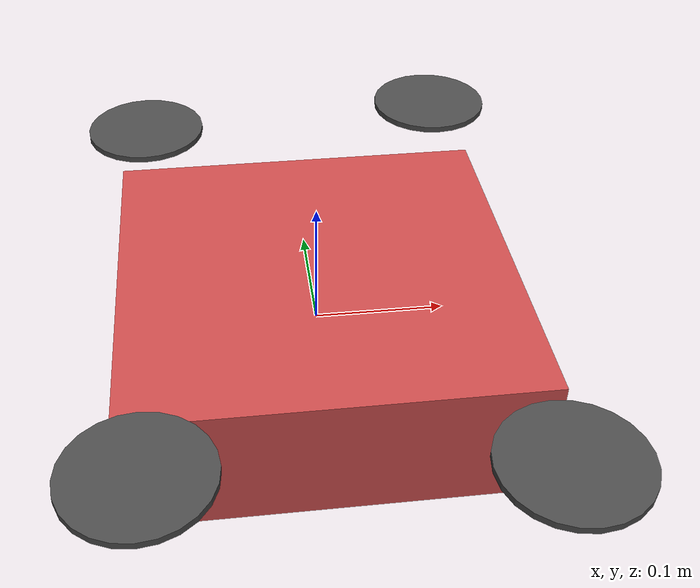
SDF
<?xml version='1.0' encoding='utf-8'?>
<sdf version="1.10">
  <model name="x500_like">
    <static>false</static>
    <link name="base_link">
      <pose>0 0 0 0 0 0</pose>
      <visual name="base_link_visual">
        <pose>0 0 0 0 0 0</pose>
        <geometry>
          <box>
            <size>0.3 0.3 0.1</size>
          </box>
        </geometry>
        <material>
          <ambient>0.6 0.2 0.2 1</ambient>
          <diffuse>0.8 0.3 0.3 1</diffuse>
        </material>
      </visual>
      <collision name="base_link_collision">
        <pose>0 0 0 0 0 0</pose>
        <geometry>
          <box>
            <size>0.3 0.3 0.1</size>
          </box>
        </geometry>
      </collision>
      <inertial>
        <mass>2</mass>
        <inertia>
          <ixx>0.0166667</ixx>
          <ixy>0</ixy>
          <ixz>0</ixz>
          <iyy>0.0166667</iyy>
          <iyz>0</iyz>
          <izz>0.03</izz>
        </inertia>
      </inertial>
      <sensor name="imu_sensor" type="imu">
        <always_on>1</always_on>
        <update_rate>250</update_rate>
        <imu>
          <angular_velocity>
            <x>
              <noise type="gaussian">
                <mean>0</mean>
                <stddev>0.0001</stddev>
                <bias_mean>7.5e-06</bias_mean>
                <bias_stddev>8e-07</bias_stddev>
              </noise>
            </x>
            <y>
              <noise type="gaussian">
                <mean>0</mean>
                <stddev>0.0001</stddev>
                <bias_mean>7.5e-06</bias_mean>
                <bias_stddev>8e-07</bias_stddev>
              </noise>
            </y>
            <z>
              <noise type="gaussian">
                <mean>0</mean>
                <stddev>0.0001</stddev>
                <bias_mean>7.5e-06</bias_mean>
                <bias_stddev>8e-07</bias_stddev>
              </noise>
            </z>
          </angular_velocity>
          <linear_acceleration>
            <x>
              <noise type="gaussian">
                <mean>0</mean>
                <stddev>0.001</stddev>
                <bias_mean>0.0001</bias_mean>
                <bias_stddev>0.001</bias_stddev>
              </noise>
            </x>
            <y>
              <noise type="gaussian">
                <mean>0</mean>
                <stddev>0.001</stddev>
                <bias_mean>0.0001</bias_mean>
                <bias_stddev>0.001</bias_stddev>
              </noise>
            </y>
            <z>
              <noise type="gaussian">
                <mean>0</mean>
                <stddev>0.001</stddev>
                <bias_mean>0.0001</bias_mean>
                <bias_stddev>0.001</bias_stddev>
              </noise>
            </z>
          </linear_acceleration>
        </imu>
      </sensor>
      <sensor name="navsat_sensor" type="navsat">
        <always_on>1</always_on>
        <update_rate>20</update_rate>
      </sensor>
      <sensor name="air_pressure_sensor" type="air_pressure">
        <always_on>1</always_on>
        <update_rate>50</update_rate>
        <air_pressure>
          <reference_altitude>0</reference_altitude>
          <pressure>
            <noise type="gaussian">
              <mean>0</mean>
              <stddev>1.0</stddev>
            </noise>
          </pressure>
        </air_pressure>
      </sensor>
      <sensor name="magnetometer_sensor" type="magnetometer">
        <always_on>1</always_on>
        <update_rate>50</update_rate>
        <magnetometer>
          <x>
            <noise type="gaussian">
              <mean>0</mean>
              <stddev>1.0e-06</stddev>
              <bias_mean>1.0e-06</bias_mean>
              <bias_stddev>3.0e-07</bias_stddev>
            </noise>
          </x>
          <y>
            <noise type="gaussian">
              <mean>0</mean>
              <stddev>1.0e-06</stddev>
              <bias_mean>1.0e-06</bias_mean>
              <bias_stddev>3.0e-07</bias_stddev>
            </noise>
          </y>
          <z>
            <noise type="gaussian">
              <mean>0</mean>
              <stddev>1.0e-06</stddev>
              <bias_mean>1.0e-06</bias_mean>
              <bias_stddev>3.0e-07</bias_stddev>
            </noise>
          </z>
        </magnetometer>
      </sensor>
    </link>
    <link name="rotor_0">
      <pose>0.13 -0.22 0.06 0 0 0</pose>
      <visual name="rotor_0_visual">
        <pose>0 0 0 0 0 0</pose>
        <geometry>
          <cylinder>
            <radius>0.05</radius>
            <length>0.005</length>
          </cylinder>
        </geometry>
        <material>
          <ambient>0.2 0.2 0.2 1</ambient>
          <diffuse>0.3 0.3 0.3 1</diffuse>
        </material>
      </visual>
      <collision name="rotor_0_collision">
        <pose>0 0 0 0 0 0</pose>
        <geometry>
          <cylinder>
            <radius>0.05</radius>
            <length>0.005</length>
          </cylinder>
        </geometry>
      </collision>
      <inertial>
        <mass>0.016</mass>
        <inertia>
          <ixx>4.00333e-05</ixx>
          <ixy>0</ixy>
          <ixz>0</ixz>
          <iyy>4.00333e-05</iyy>
          <iyz>0</iyz>
          <izz>8e-05</izz>
        </inertia>
      </inertial>
    </link>
    <link name="rotor_1">
      <pose>-0.13 0.2 0.06 0 0 0</pose>
      <visual name="rotor_1_visual">
        <pose>0 0 0 0 0 0</pose>
        <geometry>
          <cylinder>
            <radius>0.05</radius>
            <length>0.005</length>
          </cylinder>
        </geometry>
        <material>
          <ambient>0.2 0.2 0.2 1</ambient>
          <diffuse>0.3 0.3 0.3 1</diffuse>
        </material>
      </visual>
      <collision name="rotor_1_collision">
        <pose>0 0 0 0 0 0</pose>
        <geometry>
          <cylinder>
            <radius>0.05</radius>
            <length>0.005</length>
          </cylinder>
        </geometry>
      </collision>
      <inertial>
        <mass>0.016</mass>
        <inertia>
          <ixx>4.00333e-05</ixx>
          <ixy>0</ixy>
          <ixz>0</ixz>
          <iyy>4.00333e-05</iyy>
          <iyz>0</iyz>
          <izz>8e-05</izz>
        </inertia>
      </inertial>
    </link>
    <link name="rotor_2">
      <pose>0.13 0.22 0.06 0 0 0</pose>
      <visual name="rotor_2_visual">
        <pose>0 0 0 0 0 0</pose>
        <geometry>
          <cylinder>
            <radius>0.05</radius>
            <length>0.005</length>
          </cylinder>
        </geometry>
        <material>
          <ambient>0.2 0.2 0.2 1</ambient>
          <diffuse>0.3 0.3 0.3 1</diffuse>
        </material>
      </visual>
      <collision name="rotor_2_collision">
        <pose>0 0 0 0 0 0</pose>
        <geometry>
          <cylinder>
            <radius>0.05</radius>
            <length>0.005</length>
          </cylinder>
        </geometry>
      </collision>
      <inertial>
        <mass>0.016</mass>
        <inertia>
          <ixx>4.00333e-05</ixx>
          <ixy>0</ixy>
          <ixz>0</ixz>
          <iyy>4.00333e-05</iyy>
          <iyz>0</iyz>
          <izz>8e-05</izz>
        </inertia>
      </inertial>
    </link>
    <link name="rotor_3">
      <pose>-0.13 -0.2 0.06 0 0 0</pose>
      <visual name="rotor_3_visual">
        <pose>0 0 0 0 0 0</pose>
        <geometry>
          <cylinder>
            <radius>0.05</radius>
            <length>0.005</length>
          </cylinder>
        </geometry>
        <material>
          <ambient>0.2 0.2 0.2 1</ambient>
          <diffuse>0.3 0.3 0.3 1</diffuse>
        </material>
      </visual>
      <collision name="rotor_3_collision">
        <pose>0 0 0 0 0 0</pose>
        <geometry>
          <cylinder>
            <radius>0.05</radius>
            <length>0.005</length>
          </cylinder>
        </geometry>
      </collision>
      <inertial>
        <mass>0.016</mass>
        <inertia>
          <ixx>4.00333e-05</ixx>
          <ixy>0</ixy>
          <ixz>0</ixz>
          <iyy>4.00333e-05</iyy>
          <iyz>0</iyz>
          <izz>8e-05</izz>
        </inertia>
      </inertial>
    </link>
    <joint name="rotor_0_joint" type="revolute">
      <parent>base_link</parent>
      <child>rotor_0</child>
      <axis>
        <xyz>0 0 1</xyz>
        <dynamics>
          <damping>0.1</damping>
          <friction>0</friction>
        </dynamics>
      </axis>
    </joint>
    <joint name="rotor_1_joint" type="revolute">
      <parent>base_link</parent>
      <child>rotor_1</child>
      <axis>
        <xyz>0 0 1</xyz>
        <dynamics>
          <damping>0.1</damping>
          <friction>0</friction>
        </dynamics>
      </axis>
    </joint>
    <joint name="rotor_2_joint" type="revolute">
      <parent>base_link</parent>
      <child>rotor_2</child>
      <axis>
        <xyz>0 0 1</xyz>
        <dynamics>
          <damping>0.1</damping>
          <friction>0</friction>
        </dynamics>
      </axis>
    </joint>
    <joint name="rotor_3_joint" type="revolute">
      <parent>base_link</parent>
      <child>rotor_3</child>
      <axis>
        <xyz>0 0 1</xyz>
        <dynamics>
          <damping>0.1</damping>
          <friction>0</friction>
        </dynamics>
      </axis>
    </joint>
    <plugin filename="gz-sim-multicopter-motor-model-system" name="gz::sim::systems::MulticopterMotorModel">
      <jointName>rotor_0_joint</jointName>
      <linkName>rotor_0</linkName>
      <turningDirection>ccw</turningDirection>
      <timeConstantUp>0.0125</timeConstantUp>
      <timeConstantDown>0.025</timeConstantDown>
      <maxRotVelocity>1000</maxRotVelocity>
      <motorConstant>8.54858e-06</motorConstant>
      <momentConstant>0.016</momentConstant>
      <commandSubTopic>command/motor_speed</commandSubTopic>
      <motorNumber>0</motorNumber>
      <rotorDragCoefficient>8.06428e-05</rotorDragCoefficient>
      <rollingMomentCoefficient>1e-06</rollingMomentCoefficient>
      <motorSpeedPubTopic>motor_speed/0</motorSpeedPubTopic>
      <rotorVelocitySlowdownSim>10</rotorVelocitySlowdownSim>
      <motorType>velocity</motorType>
    </plugin>
    <plugin filename="gz-sim-multicopter-motor-model-system" name="gz::sim::systems::MulticopterMotorModel">
      <jointName>rotor_1_joint</jointName>
      <linkName>rotor_1</linkName>
      <turningDirection>ccw</turningDirection>
      <timeConstantUp>0.0125</timeConstantUp>
      <timeConstantDown>0.025</timeConstantDown>
      <maxRotVelocity>1000</maxRotVelocity>
      <motorConstant>8.54858e-06</motorConstant>
      <momentConstant>0.016</momentConstant>
      <commandSubTopic>command/motor_speed</commandSubTopic>
      <motorNumber>1</motorNumber>
      <rotorDragCoefficient>8.06428e-05</rotorDragCoefficient>
      <rollingMomentCoefficient>1e-06</rollingMomentCoefficient>
      <motorSpeedPubTopic>motor_speed/1</motorSpeedPubTopic>
      <rotorVelocitySlowdownSim>10</rotorVelocitySlowdownSim>
      <motorType>velocity</motorType>
    </plugin>
    <plugin filename="gz-sim-multicopter-motor-model-system" name="gz::sim::systems::MulticopterMotorModel">
      <jointName>rotor_2_joint</jointName>
      <linkName>rotor_2</linkName>
      <turningDirection>cw</turningDirection>
      <timeConstantUp>0.0125</timeConstantUp>
      <timeConstantDown>0.025</timeConstantDown>
      <maxRotVelocity>1000</maxRotVelocity>
      <motorConstant>8.54858e-06</motorConstant>
      <momentConstant>0.016</momentConstant>
      <commandSubTopic>command/motor_speed</commandSubTopic>
      <motorNumber>2</motorNumber>
      <rotorDragCoefficient>8.06428e-05</rotorDragCoefficient>
      <rollingMomentCoefficient>1e-06</rollingMomentCoefficient>
      <motorSpeedPubTopic>motor_speed/2</motorSpeedPubTopic>
      <rotorVelocitySlowdownSim>10</rotorVelocitySlowdownSim>
      <motorType>velocity</motorType>
    </plugin>
    <plugin filename="gz-sim-multicopter-motor-model-system" name="gz::sim::systems::MulticopterMotorModel">
      <jointName>rotor_3_joint</jointName>
      <linkName>rotor_3</linkName>
      <turningDirection>cw</turningDirection>
      <timeConstantUp>0.0125</timeConstantUp>
      <timeConstantDown>0.025</timeConstantDown>
      <maxRotVelocity>1000</maxRotVelocity>
      <motorConstant>8.54858e-06</motorConstant>
      <momentConstant>0.016</momentConstant>
      <commandSubTopic>command/motor_speed</commandSubTopic>
      <motorNumber>3</motorNumber>
      <rotorDragCoefficient>8.06428e-05</rotorDragCoefficient>
      <rollingMomentCoefficient>1e-06</rollingMomentCoefficient>
      <motorSpeedPubTopic>motor_speed/3</motorSpeedPubTopic>
      <rotorVelocitySlowdownSim>10</rotorVelocitySlowdownSim>
      <motorType>velocity</motorType>
    </plugin>
  </model>
</sdf>
